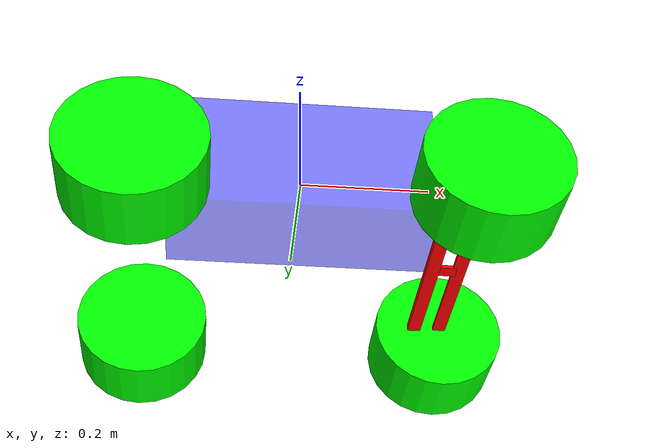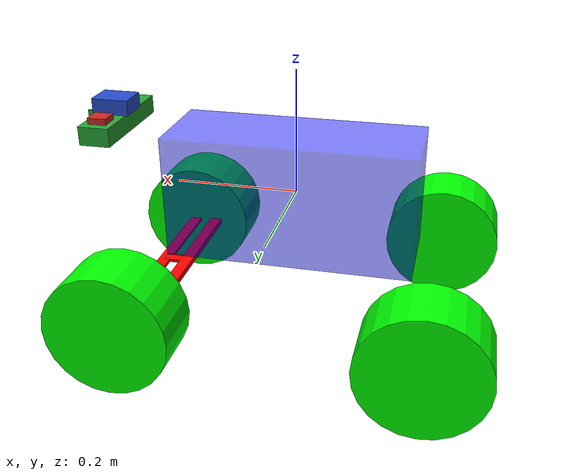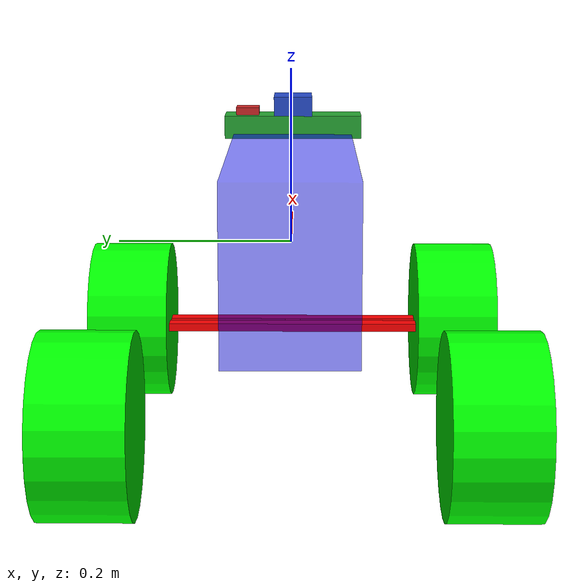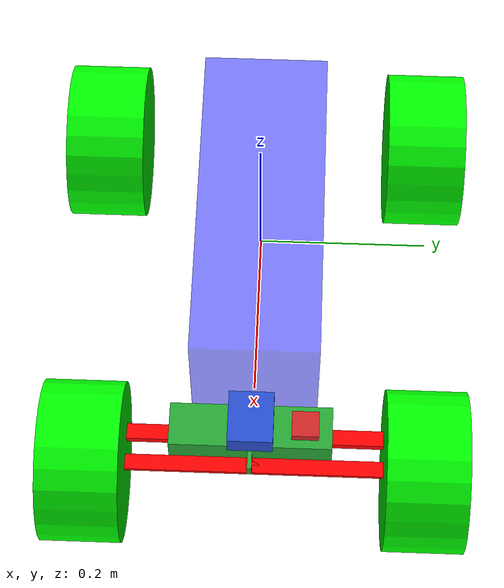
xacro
<?xml version="1.0"?>
<robot
    xmlns:gazebo="http://playerstage.sourceforge.net/gazebo/xmlschema/#gz"
    xmlns:model="http://playerstage.sourceforge.net/gazebo/xmlschema/#model"
    xmlns:sensor="http://playerstage.sourceforge.net/gazebo/xmlschema/#sensor"
    xmlns:body="http://playerstage.sourceforge.net/gazebo/xmlschema/#body"
    xmlns:geom="http://playerstage.sourceforge.net/gazebo/xmlschema/#geom"
    xmlns:joint="http://playerstage.sourceforge.net/gazebo/xmlschema/#joint"
    xmlns:controller="http://playerstage.sourceforge.net/gazebo/xmlschema/#controller"
    xmlns:interface="http://playerstage.sourceforge.net/gazebo/xmlschema/#interface"
    xmlns:rendering="http://playerstage.sourceforge.net/gazebo/xmlschema/#rendering"
    xmlns:physics="http://playerstage.sourceforge.net/gazebo/xmlschema/#physics"
    xmlns:xacro="http://www.ros.org/wiki/xacro"
    name="ackermann">

    <xacro:property name="M_PI" value="3.1415926535897931" />
    <xacro:property name="wheel_diameter" value="0.20" />
    <xacro:property name="wheel_width" value="0.10" />
    <xacro:property name="box" value="0.10" />
    <xacro:property name="x_wheel_separation" value="0.47" />
    <xacro:property name="y_wheel_separation" value="0.42" />
    <xacro:property name="body_length" value="0.40" />
    <xacro:property name="body_width" value="0.15" />
    <xacro:property name="body_height" value="0.20" />

    <material name="Red">
    	<color rgba="1.0 0 0 1.0"/>
    </material>
    <material name="Green">
    	<color rgba="0 1.0 0 1.0"/>
    </material>
    <material name="Blue">
    	<color rgba="0 0 1.0 0.5"/>
    </material>

    <!-- Main body -->
    <link name="base_link">
        <inertial>
            <mass value="0.2" />
            <origin xyz="0 0 0" />
            <inertia  ixx="0.2" ixy="0.0"  ixz="0.0"  iyy="0.2"  iyz="0.0"  izz="0.2" />
        </inertial>
        <visual>
            <origin xyz="0 0 0" rpy="0 0 0" />
            <geometry>
                <box size="${body_length} ${body_width} ${body_height}" />
            </geometry>
            <material name="Blue"/>
        </visual>
        <collision>
            <origin xyz="0 0 0" rpy="0 0 0" />
            <geometry>
                <box size="${body_length} ${body_width} ${body_height}" />
            </geometry>
        </collision>
    </link>
    <gazebo reference="base_link">
        <material>Gazebo/Blue</material>
    </gazebo>

    <!-- Front link of Ackermann -->
    <joint name="front_joint" type="fixed">
    	<parent link="base_link"/>
    	<child link="front_link"/>
    	<origin xyz="${x_wheel_separation/2} 0.0 -0.15"/>
    </joint>
    <link name="front_link">
        <inertial>
            <mass value="0.01" />
            <origin xyz="0 0 0" />
            <inertia  ixx="0.01" ixy="0.0"  ixz="0.0"  iyy="0.01"  iyz="0.0"  izz="0.01" />
        </inertial>
        <visual>
            <geometry>
                <box size="0.02 ${y_wheel_separation} 0.005" />
            </geometry>
            <material name="Red"/>
        </visual>
        <collision>
            <geometry>
                <box size="0.02 ${y_wheel_separation} 0.005" />
            </geometry>
        </collision>
    </link>
    <gazebo reference="front_link">
        <material>Gazebo/Red</material>
    </gazebo>

    <!-- a link aligned with the steer direction -->
    <joint name="steer_joint" type="fixed" >
        <limit lower="-0.5" upper="0.5" effort="100" velocity="10" />
        <axis xyz="0 0 1" />
        <parent link="front_link" />
        <child link="steer_link" />
        <origin xyz="0.0 0.0 0.0" rpy="0 0 0" />
    </joint>
    <link name="steer_link">
        <inertial>
            <mass value="0.01" />
            <origin xyz="0 0 0" />
            <inertia  ixx="0.01" ixy="0.0"  ixz="0.0"  iyy="0.01"  iyz="0.0"  izz="0.01" />
        </inertial>
        <visual>
            <origin xyz="-0.02 0 0" />
            <geometry>
                <box size="0.04 0.02 0.005" />
            </geometry>
            <material name="Red"/>
        </visual>
        <collision>
            <origin xyz="0.02 0 0" />
            <geometry>
                <box size="0.04 0.02 0.005" />
            </geometry>
        </collision>
    </link>
    <gazebo reference="steer_link">
        <material>Gazebo/Red</material>
    </gazebo>

    <!-- the left Ackermann bar -->
    <joint name="front_left_bar_joint" type="fixed" >
        <limit lower="-0.5" upper="0.5" effort="100" velocity="10" />
        <axis xyz="0 0 1" />
        <parent link="front_link" />
        <child link="front_left_bar_link" />
        <origin xyz="0.0 ${y_wheel_separation/2} 0.0" rpy="0 0 0" />
    </joint>
    <link name="front_left_bar_link">
        <inertial>
            <mass value="0.01" />
            <origin xyz="0 0 0" />
            <inertia  ixx="0.01" ixy="0.0"  ixz="0.0"  iyy="0.01"  iyz="0.0"  izz="0.01" />
        </inertial>
        <visual>
            <origin xyz="-0.02 0 0" />
            <geometry>
                <box size="0.04 0.02 0.005" />
            </geometry>
            <material name="Red"/>
        </visual>
        <collision>
            <origin xyz="-0.02 0 0" />
            <geometry>
                <box size="0.04 0.02 0.005" />
            </geometry>
        </collision>
    </link>
    <gazebo reference="front_left_bar_link">
        <material>Gazebo/Red</material>
    </gazebo>

    <!-- the right Ackermann bar -->
    <joint name="front_right_bar_joint" type="fixed" >
        <limit lower="-0.5" upper="0.5" effort="100" velocity="10" />
        <axis xyz="0 0 1" />
        <parent link="front_link" />
        <child link="front_right_bar_link" />
        <origin xyz="0.0 -${y_wheel_separation/2} 0.0" rpy="0 0 0" />
    </joint>
    <link name="front_right_bar_link">
        <inertial>
            <mass value="0.01" />
            <origin xyz="0 0 0" />
            <inertia  ixx="0.01" ixy="0.0"  ixz="0.0"  iyy="0.01"  iyz="0.0"  izz="0.01" />
        </inertial>
        <visual>
            <origin xyz="-0.02 0 0" />
            <geometry>
                <box size="0.04 0.02 0.005" />
            </geometry>
            <material name="Red"/>
        </visual>
        <collision>
            <origin xyz="-0.02 0 0" />
            <geometry>
                <box size="0.04 0.02 0.005" />
            </geometry>
        </collision>
    </link>
    <gazebo reference="front_right_bar_link">
        <material>Gazebo/Red</material>
    </gazebo>

	<!-- the front left wheel -->
    <joint name="front_left_wheel_joint" type="fixed" >
        <axis xyz="0 1 0" />
        <parent link="front_left_bar_link" />
        <child link="front_left_wheel_link" />
        <origin xyz="0 0 0" rpy="0 0 0" />
    </joint>
    <link name="front_left_wheel_link">
        <inertial>
            <mass value="0.01" />
            <origin xyz="0 0 0" />
            <inertia  ixx="0.01" ixy="0.0"  ixz="0.0"  iyy="0.01"  iyz="0.0"  izz="0.01" />
        </inertial>
        <visual>
            <origin xyz="0 0 0" rpy="${M_PI/2} 0 0" />
            <geometry>
                <cylinder radius="${wheel_diameter/2}" length="${wheel_width}" />
            </geometry>
            <material name="Green"/>
        </visual>
        <collision>
            <origin xyz="0 0 0" rpy="${M_PI/2} 0 0" />
            <geometry>
                <cylinder radius="${wheel_diameter/2}" length="${wheel_width}" />
            </geometry>
        </collision>
    </link>
    <gazebo reference="front_left_wheel_link">
        <material>Gazebo/Green</material>
    </gazebo>

	<!-- the front right wheel -->
    <joint name="front_right_wheel_joint" type="fixed" >
        <axis xyz="0 1 0" />
        <parent link="front_right_bar_link" />
        <child link="front_right_wheel_link" />
        <origin xyz="0 0 0" rpy="0 0 0" />
    </joint>
    <link name="front_right_wheel_link">
        <inertial>
            <mass value="0.01" />
            <origin xyz="0 0 0" />
            <inertia  ixx="0.01" ixy="0.0"  ixz="0.0"  iyy="0.01"  iyz="0.0"  izz="0.01" />
        </inertial>
        <visual>
            <origin xyz="0 0 0" rpy="${M_PI/2} 0 0" />
            <geometry>
                <cylinder radius="${wheel_diameter/2}" length="${wheel_width}" />
            </geometry>
            <material name="Green"/>
        </visual>
        <collision>
            <origin xyz="0 0 0" rpy="${M_PI/2} 0 0" />
            <geometry>
                <cylinder radius="${wheel_diameter/2}" length="${wheel_width}" />
            </geometry>
        </collision>
    </link>
    <gazebo reference="front_right_wheel_link">
        <material>Gazebo/Green</material>
        <turnGravityOff>false</turnGravityOff>
    </gazebo>

	<!-- the Ackerman bar -->
    <joint name="ackermann_joint" type="fixed" >
        <limit lower="-0.5" upper="0.5" effort="100" velocity="10" />
        <axis xyz="0 0 1" />
        <parent link="steer_link" />
        <child link="ackermann_bar_link" />
        <origin xyz="-0.04 0 0" rpy="0 0 0" />
    </joint>
    <link name="ackermann_bar_link">
        <inertial>
            <mass value="0.01" />
            <origin xyz="0 0 0" />
            <inertia  ixx="0.01" ixy="0.0"  ixz="0.0"  iyy="0.01"  iyz="0.0"  izz="0.01" />
        </inertial>
        <visual>
            <geometry>
                <box size="0.02 ${y_wheel_separation} 0.01" />
            </geometry>
            <material name="Red"/>
        </visual>
        <collision>
            <geometry>
                <box size="0.02 ${y_wheel_separation} 0.01" />
            </geometry>
        </collision>
    </link>
    <gazebo reference="front_link">
        <material>Gazebo/Red</material>
    </gazebo>
    <gazebo reference="ackermann_bar_link">
        <material>Gazebo/Blue</material>
    </gazebo>

	<!-- Gazebo Ackermann loop joints -->
    <gazebo>
      <joint:hinge name="ackermann_left_bar_joint">
        <body1>ackermann_bar_link</body1>
        <body2>front_left_bar_link</body2>
        <anchor>ackermann_bar_link</anchor>
        <axis>0 0 1</axis>
        <anchorOffset>0 0.06 0</anchorOffset>
      </joint:hinge>
    </gazebo>
    <gazebo>
      <joint:hinge name="ackermann_right_bar_joint">
        <body1>ackermann_bar_link</body1>
        <body2>front_right_bar_link</body2>
        <anchor>ackermann_bar_link</anchor>
        <axis>0 0 1</axis>
        <anchorOffset>0 -0.06 0</anchorOffset>
      </joint:hinge>
    </gazebo>

	<!-- the back left wheel -->
    <joint name="back_left_wheel_joint" type="fixed" >
        <axis xyz="0 1 0" />
        <parent link="base_link" />
        <child link="back_left_wheel_link" />
        <origin xyz="-${x_wheel_separation/2} ${y_wheel_separation/2} -0.15" rpy="0 0 0" />
    </joint>
    <link name="back_left_wheel_link">
        <inertial>
            <mass value="0.01" />
            <origin xyz="0 0 0" />
            <inertia  ixx="0.01" ixy="0.0"  ixz="0.0"  iyy="0.01"  iyz="0.0"  izz="0.01" />
        </inertial>
        <visual>
            <origin xyz="0 0 0" rpy="${M_PI/2} 0 0" />
            <geometry>
                <cylinder radius="${wheel_diameter/2}" length="${wheel_width}" />
            </geometry>
            <material name="Green"/>
        </visual>
        <collision>
            <origin xyz="0 0 0" rpy="${M_PI/2} 0 0" />
            <geometry>
                <cylinder radius="${wheel_diameter/2}" length="${wheel_width}" />
            </geometry>
        </collision>
    </link>
    <gazebo reference="back_left_wheel_link">
        <material>Gazebo/Green</material>
    </gazebo>

	<!-- the back right wheel -->
    <joint name="back_right_wheel_joint" type="fixed" >
        <axis xyz="0 1 0" />
        <parent link="base_link" />
        <child link="back_right_wheel_link" />
        <origin xyz="-${x_wheel_separation/2} -${y_wheel_separation/2} -0.15" rpy="0 0 0" />
    </joint>
    <link name="back_right_wheel_link">
        <inertial>
            <mass value="0.01" />
            <origin xyz="0 0 0" />
            <inertia  ixx="0.01" ixy="0.0"  ixz="0.0"  iyy="0.01"  iyz="0.0"  izz="0.01" />
        </inertial>
        <visual>
            <origin xyz="0 0 0" rpy="${M_PI/2} 0 0" />
            <geometry>
                <cylinder radius="${wheel_diameter/2}" length="${wheel_width}" />
            </geometry>
            <material name="Green"/>
        </visual>
        <collision>
            <origin xyz="0 0 0" rpy="${M_PI/2} 0 0" />
            <geometry>
                <cylinder radius="${wheel_diameter/2}" length="${wheel_width}" />
            </geometry>
        </collision>
    </link>
    <gazebo reference="back_right_wheel_link">
        <material>Gazebo/Green</material>
    </gazebo>

    <!-- Ackermann plugin -->
    <gazebo>
      <controller:ackermann_plugin name="ackermann_controller"
			           plugin="libackermann_plugin.so">
	<alwaysOn>true</alwaysOn>
	<update>100</update>
	<updateRate>100.0</updateRate>
	<leftJoint>back_left_wheel_joint</leftJoint>
	<rightJoint>back_right_wheel_joint</rightJoint>
	<steerJoint>steer_joint</steerJoint>
	<wheelSeparationWidth>0.16</wheelSeparationWidth>
	<wheelSeparationLength>0.32</wheelSeparationLength>
        <!-- Shouldn't this wheel diameter include the tire?
             (40 cm is about right for the bare rim)
          -->
	<wheelDiameter>0.041</wheelDiameter>
	<driveTorque>5</driveTorque>
	<steerTorque>5</steerTorque>
	<interface:position name="position_iface_0" />
	<robotNamespace>/</robotNamespace>
	<topicName>pilot/drive</topicName>
      </controller:ackermann_plugin>

     <canonicalBody>base_footprint</canonicalBody>

    <!-- this publishes empty joint_states due to no transmission, but
    triggering robot_state_publisher to publish tf between fixed joints in erratic,
    (e.g. base_laser_link for the base_scan frame) -->
    <controller:gazebo_ros_controller_manager name="gazebo_ros_controller_manager" plugin="libgazebo_ros_controller_manager.so">
      <alwaysOn>true</alwaysOn>
      <updateRate>100.0</updateRate>
      <interface:audio name="gazebo_ros_controller_manager_dummy_iface" />
    </controller:gazebo_ros_controller_manager>

    </gazebo>

        <joint name="sensors_base_mount_joint" type="fixed">
            <origin xyz="0.3 0 0.1" rpy="0 0 0" />
            <parent link="base_link"/>
            <child link="sensors_base_link"/>
        </joint>

        <link name="sensors_base_link" type="fixed">
            <inertial>
                <mass value="0.1"/>
                <origin xyz="0 0 0.0"/>
                <inertia ixx="0.1" ixy="0" ixz="0" iyy="0.1" iyz="0" izz="0.1"/>
            </inertial>

            <visual>
                <origin rpy="0 0 0" xyz="0 0 0"/>
                <geometry>
                    <box size="0.05 0.18 0.03"/>
                </geometry>
            </visual>

            <collision>
                <origin rpy="0 0 0" xyz="0 0 0"/>
                <geometry>
                    <box size="0.05 0.18 0.03"/>
                </geometry>
            </collision>
        </link>

        <joint name="radar_joint" type="fixed" >
            <origin xyz="0.0275 0 0.005" rpy="${M_PI/2} 0 0" />
            <parent link="sensors_base_link" />
            <child link="radar_link"/>
        </joint>

        <joint name="imu_joint" type="fixed" >
            <origin xyz="0 0.06 0.02" rpy="${M_PI} 0 0" />
            <parent link="sensors_base_link" />
            <child link="imu_link"/>
        </joint>

        <joint name="gnss_joint" type="fixed" >
            <origin xyz="0 0 0.0275" rpy="0 0 0" />
            <parent link="sensors_base_link" />
            <child link="gnss_link"/>
        </joint>

        <link name="radar_link">
            <inertial>
                <mass value="0.1"/>
                <origin xyz="0 0 0.0"/>
                <inertia ixx="0.1" ixy="0" ixz="0" iyy="0.1" iyz="0" izz="0.1"/>
            </inertial>

            <visual>
                <origin rpy="0 0 0" xyz="0.0075 0 0"/>
                <geometry>
                    <box size="0.03 0.015 0.005" />
                </geometry>
            </visual>

            <collision>
                <origin rpy="0 0 0" xyz="0 0 0"/>
                <geometry>
                    <box size="0.03 0.015 0.005" />
                </geometry>
            </collision>
        </link>

        <link name="imu_link">
            <inertial>
                <mass value="0.1"/>
                <origin xyz="0 0 0"/>
                <inertia ixx="0.1" ixy="0" ixz="0" iyy="0.1" iyz="0" izz="0.1"/>
            </inertial>

            <visual>
                <origin rpy="0 0 0" xyz="0 0 0"/>
                <geometry>
                    <box size="0.03 0.03 0.01" />
                </geometry>
            </visual>

            <collision>
                <origin rpy="0 0 0" xyz="0 0 0"/>
                <geometry>
                    <box size="0.03 0.03 0.01" />
                </geometry>
            </collision>
        </link>

        <link name="gnss_link">
            <inertial>
                <mass value="0.1"/>
                <origin xyz="0 0 0.0"/>
                <inertia ixx="0.1" ixy="0" ixz="0" iyy="0.1" iyz="0" izz="0.1"/>
            </inertial>

            <visual>
                <origin rpy="0 0 0" xyz="0 0 0"/>
                <geometry>
                    <box size="0.06 0.05 0.025" />
                </geometry>
            </visual>

            <collision>
                <origin rpy="0 0 0" xyz="0 0 0"/>
                <geometry>
                    <box size="0.06 0.05 0.025" />
                </geometry>
            </collision>
        </link>

        <gazebo reference="sensors_base_link">
            <material>Gazebo/Green</material>
        </gazebo>

        <gazebo reference="radar_link">
            <material>Gazebo/Green</material>
        </gazebo>

        <gazebo reference="imu_link">
            <material>Gazebo/Red</material>
        </gazebo>

        <gazebo reference="gnss_link">
            <material>Gazebo/Blue</material>
        </gazebo>
</robot>
